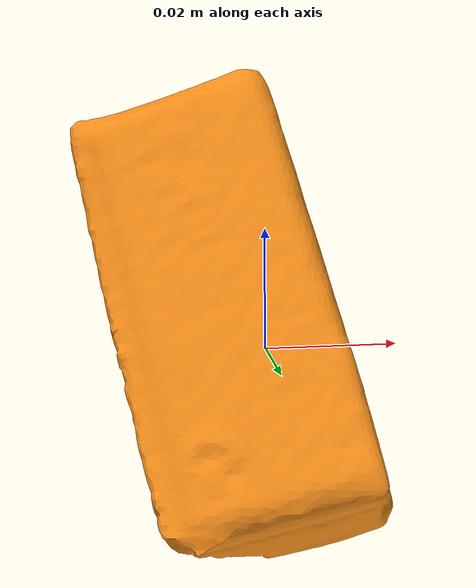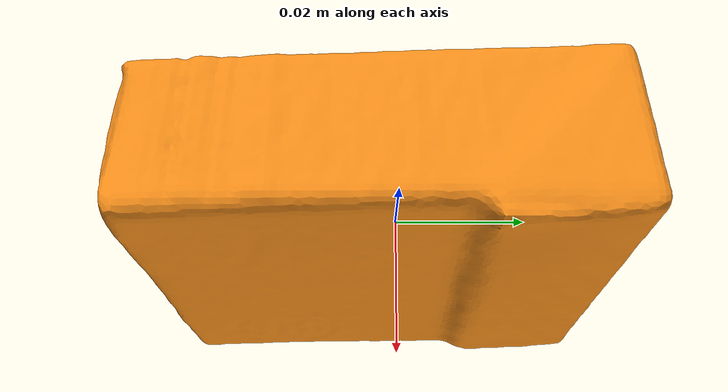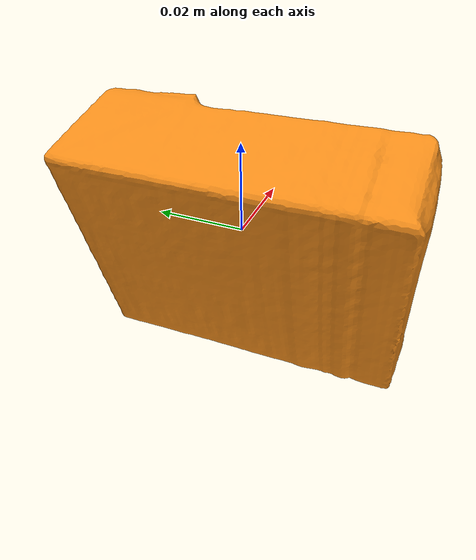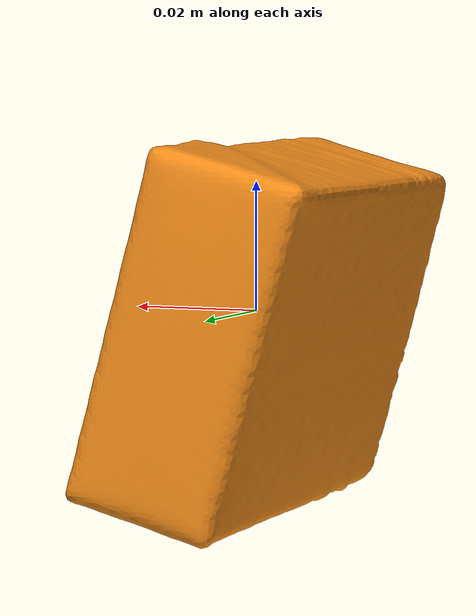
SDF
<?xml version='1.0'?>
<sdf version="1.4">
  <model name="DropsOrange">
    <static>false</static>
    <link name="link">
      <inertial>
        <pose>-0.0003670321665076708 -0.0017429849742334352 -0.0026346361028404884 -1.5661045103453042 0.2683399711883289 3.1412450068358155</pose>
        <mass>0.009997113530651244</mass>
        <inertia>
          <ixx>6.432530171023256e-06</ixx>
          <ixy>-6.450106065273109e-22</ixy>
          <ixz>-9.121635738253094e-23</ixz>
          <iyy>4.556142829818861e-06</iyy>
          <iyz>9.801627319999153e-23</iyz>
          <izz>3.000796291974711e-06</izz>
        </inertia>
      </inertial>
      <collision name="collision">
        <geometry>
          <mesh>
            <!-- Use a downsampled mesh for collisions -->
            <uri>model:///DropsOrange/DropsOrange_250_collision.obj</uri>
	        </mesh>
        </geometry>
        <surface>
      </surface>
      </collision>
      <visual name="visual">
        <geometry>
          <mesh>
            <uri>model:///DropsOrange/DropsOrange_25k_tex.obj</uri>
	        </mesh>
        </geometry>
        <material>
          <script>
            <uri>model:///DropsOrange/DropsOrange.material</uri>
            <name>DropsOrange</name>
          </script>
        </material>
      </visual>
    </link>
  </model>
</sdf>
